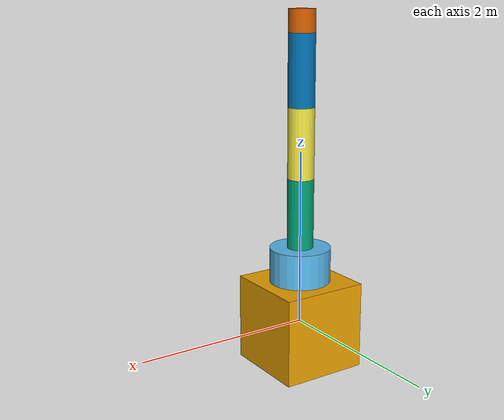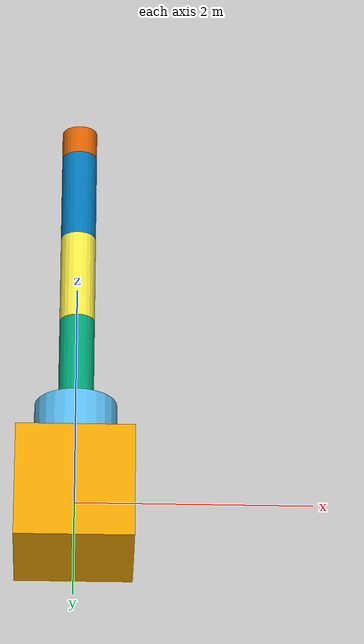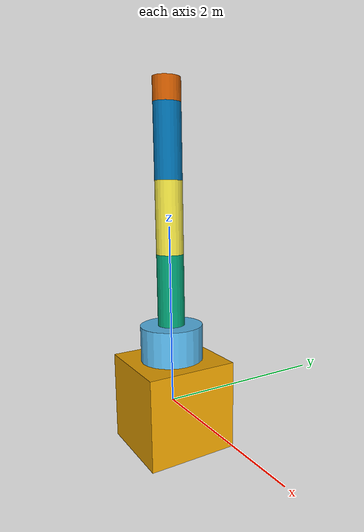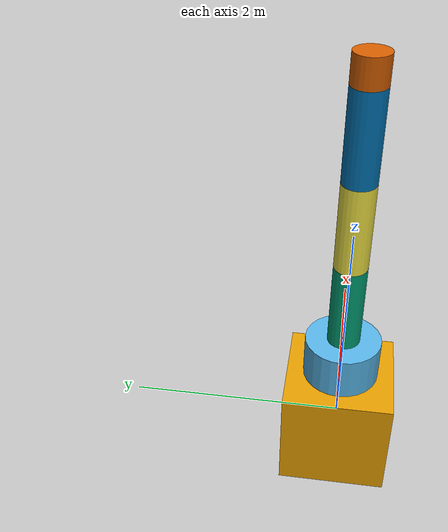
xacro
<?xml version="1.0" ?>

<robot name="mrm" xmlns:xacro="http://www.ros.org/wiki/xacro">

  <!-- BGN - Include -->
  <xacro:include filename="/server_ws/src/arm_model/urdf/robot_parameters.xacro" />
  <xacro:include filename="/server_ws/src/arm_model/urdf/links_joints.xacro" />
  <!-- END - Include -->

  <!-- BGN - Robot description -->
  <xacro:m_link_box name="${link_00_name}"
              origin_rpy="0 0 0" origin_xyz="0 0 0"
              mass="1024"
              ixx="170.667" ixy="0" ixz="0"
              iyy="170.667" iyz="0"
              izz="170.667"
              size="1 1 1" />

  <xacro:m_joint name="${link_00_name}__${link_01_name}" type="revolute"
           axis_xyz="0 0 1"
           origin_rpy="0 0 0" origin_xyz="0 0 0.5"
           parent="base_link" child="link_01"
           limit_e="1000" limit_l="-3.14" limit_u="3.14" limit_v="0.5" />

  <xacro:m_link_cylinder name="${link_01_name}"
              origin_rpy="0 0 0" origin_xyz="0 0 0.2"
              mass="157.633"
              ixx="13.235" ixy="0" ixz="0"
              iyy="13.235" iyz="0"
              izz="9.655"
              radius="0.35" length="0.4" />

  <xacro:m_joint name="${link_01_name}__${link_02_name}" type="revolute"
           axis_xyz="0 1 0"
           origin_rpy="0 0 0" origin_xyz="0 0 0.4"
           parent="link_01" child="link_02"
           limit_e="1000" limit_l="0" limit_u="0.5" limit_v="0.5" />

  <xacro:m_link_cylinder name="${link_02_name}"
              origin_rpy="0 0 0" origin_xyz="0 0 0.4"
              mass="57.906"
              ixx="12.679" ixy="0" ixz="0"
              iyy="12.679" iyz="0"
              izz="0.651"
              radius="0.15" length="0.8" />

  <xacro:m_joint name="${link_02_name}__${link_03_name}" type="revolute"
           axis_xyz="0 1 0"
           origin_rpy="0 0 0" origin_xyz="0 0 0.8"
           parent="link_02" child="link_03"
           limit_e="1000" limit_l="0" limit_u="0.75" limit_v="0.5" />

  <xacro:m_link_cylinder name="${link_03_name}"
              origin_rpy="0 0 0" origin_xyz="0 0 0.4"
              mass="57.906"
              ixx="12.679" ixy="0" ixz="0"
              iyy="12.679" iyz="0"
              izz="0.651"
              radius="0.15" length="0.8" />

  <xacro:m_joint name="${link_03_name}__${link_04_name}" type="revolute"
           axis_xyz="0 1 0"
           origin_rpy="0 0 0" origin_xyz="0 0 0.8"
           parent="link_03" child="link_04"
           limit_e="1000" limit_l="0" limit_u="0.75" limit_v="0.5" />

  <xacro:m_link_cylinder name="${link_04_name}"
              origin_rpy="0 0 0" origin_xyz="0 0 0.4"
              mass="57.906"
              ixx="12.679" ixy="0" ixz="0"
              iyy="12.679" iyz="0"
              izz="0.651"
              radius="0.15" length="0.8" />

  <xacro:m_joint name="${link_04_name}__${link_05_name}" type="revolute"
           axis_xyz="0 0 1"
           origin_rpy="0 0 0" origin_xyz="0 0 0.8"
           parent="link_04" child="link_05"
           limit_e="1000" limit_l="-3.14" limit_u="3.14" limit_v="0.5" />

  <xacro:m_link_cylinder name="${link_05_name}"
              origin_rpy="0 0 0" origin_xyz="0 0 0.125"
              mass="18.056"
              ixx="0.479" ixy="0" ixz="0"
              iyy="0.479" iyz="0"
              izz="0.204"
              radius="0.15" length="0.25" />

  <!-- END - Robot description Total weight = 1373.401  ==> 13473.065N-->

    <!-- This plugin will publish the joint_states for the selected joints
            (which robot_state_publisher can then use to broadcast the approprate tf). -->

    <gazebo>
      <plugin name="gazebo_ros_joint_state_publisher" filename="libgazebo_ros_joint_state_publisher.so">
        <update_rate>20</update_rate>
        <joint_name>${link_00_name}__${link_01_name}</joint_name>
        <joint_name>${link_01_name}__${link_02_name}</joint_name>
        <joint_name>${link_03_name}__${link_04_name}</joint_name>
        <joint_name>${link_04_name}__${link_05_name}</joint_name>
      </plugin>
    </gazebo>

    <!-- This plugin will read a JointTrajectory message from the /set_joint_trajectory topic
            and move the machine accordingly. It's a bit clunky but it works. -->
    <gazebo>
      <plugin name="gazebo_ros_joint_pose_trajectory"
        filename="libgazebo_ros_joint_pose_trajectory.so">
        <update_rate>2</update_rate>
      </plugin>
    </gazebo>

    <!-- Ros Gazebo force Plugin -->

    <gazebo>
      <plugin name="gazebo_ros_force" filename="libgazebo_ros_force.so">

        <ros>
          <!-- Add a namespace -->
          <namespace>/force</namespace>
          <!-- Remap the default topic -->
          <remapping>gazebo_ros_force:=${link_01_name}</remapping>
        </ros>

        <force_frame>link</force_frame>
        <link_name>${link_01_name}</link_name>
      </plugin>
    </gazebo>

</robot>

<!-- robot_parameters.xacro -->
<robot xmlns:xacro="http://www.ros.org/wiki/xacro">
  <xacro:property name="link_00_name" value="base_link" />
  <xacro:property name="link_01_name" value="link_01" />
  <xacro:property name="link_02_name" value="link_02" />
  <xacro:property name="link_03_name" value="link_03" />
  <xacro:property name="link_04_name" value="link_04" />
  <xacro:property name="link_05_name" value="link_05" />

  <xacro:property name="link_clawR_name" value="link_clawR" />
  <xacro:property name="link_clawL_name" value="link_clawL" />

  <xacro:property name="link_00_dim" value="${[0.09,0.09,0.135]}" />
  <xacro:property name="link_01_dim" value="${[0.02,0.029]}" />
  <xacro:property name="link_02_dim" value="${[0.103,0.052,0.025]}" />
  <xacro:property name="link_03_dim" value="${[0.065,0.022,0.055]}" />
  <xacro:property name="link_04_dim" value="${[0.055,0.052,0.025]}" />
  <xacro:property name="link_05_dim" value="${[0.03,0.03,0.005]}" />

</robot>

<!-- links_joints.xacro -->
<robot xmlns:xacro="http://www.ros.org/wiki/xacro">

  <xacro:macro name="m_joint" params="name type axis_xyz origin_rpy origin_xyz parent child limit_e limit_l limit_u limit_v">
    <joint name="${name}" type="${type}">
      <axis xyz="${axis_xyz}" />
      <limit effort="${limit_e}" lower="${limit_l}" upper="${limit_u}" velocity="${limit_v}" />
      <origin rpy="${origin_rpy}" xyz="${origin_xyz}" />
      <parent link="${parent}" />
      <child link="${child}" />
      <dynamics damping="10.0" friction="10.0"/>
    </joint>
  </xacro:macro>

  <xacro:macro name="m_jointStatic" params="name origin_rpy origin_xyz parent child">
    <joint name="${name}" type="fixed">
      <origin rpy="${origin_rpy}" xyz="${origin_xyz}" />
      <parent link="${parent}" />
      <child link="${child}" />
    </joint>
  </xacro:macro>

  <xacro:macro name="m_link_cylinder" params="name origin_xyz origin_rpy radius length mass ixx ixy ixz iyy iyz izz">
    <link name="${name}">
      <inertial>
        <mass value="${mass}" />
        <origin rpy="${origin_rpy}" xyz="${origin_xyz}" />
        <inertia ixx="${ixx}" ixy="${ixy}" ixz="${ixz}" iyy="${iyy}" iyz="${iyz}" izz="${izz}" />
      </inertial>
      <collision>
        <origin rpy="${origin_rpy}" xyz="${origin_xyz}" />
        <geometry>
          <cylinder radius="${radius}" length="${length}" />
        </geometry>
      </collision>
      <visual>
        <origin rpy="${origin_rpy}" xyz="${origin_xyz}" />
        <geometry>
          <cylinder radius="${radius}" length="${length}" />
        </geometry>
      </visual>
    </link>
  </xacro:macro>

  <xacro:macro name="m_link_box" params="name origin_xyz origin_rpy size mass ixx ixy ixz iyy iyz izz">
    <link name="${name}">
      <inertial>
        <mass value="${mass}" />
        <origin rpy="${origin_rpy}" xyz="${origin_xyz}" />
        <inertia ixx="${ixx}" ixy="${ixy}" ixz="${ixz}" iyy="${iyy}" iyz="${iyz}" izz="${izz}" />
      </inertial>
      <collision>
        <origin rpy="${origin_rpy}" xyz="${origin_xyz}" />
        <geometry>
          <box size="${size}" />
        </geometry>
      </collision>
      <visual>
        <origin rpy="${origin_rpy}" xyz="${origin_xyz}" />
        <geometry>
          <box size="${size}" />
        </geometry>
      </visual>
    </link>
  </xacro:macro>

  <xacro:macro name="m_link_mesh" params="name origin_xyz origin_rpy meshfile meshscale mass ixx ixy ixz iyy iyz izz">
    <link name="${name}">
      <inertial>
        <mass value="${mass}" />
        <origin rpy="${origin_rpy}" xyz="${origin_xyz}" />
        <inertia ixx="${ixx}" ixy="${ixy}" ixz="${ixz}" iyy="${iyy}" iyz="${iyz}" izz="${izz}" />
      </inertial>
      <collision>
        <origin rpy="${origin_rpy}" xyz="${origin_xyz}" />
        <geometry>
          <mesh filename="${meshfile}" scale="${meshscale}"/>
        </geometry>
      </collision>
      <visual>
        <origin rpy="${origin_rpy}" xyz="${origin_xyz}" />
        <geometry>
          <mesh filename="${meshfile}" scale="${meshscale}"/>
        </geometry>
        <material name="light_black"/>
      </visual>
    </link>
  </xacro:macro>

</robot>
